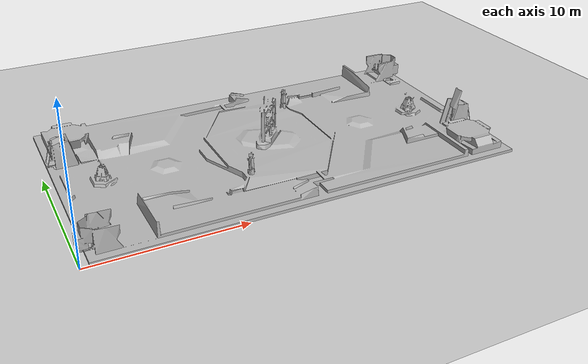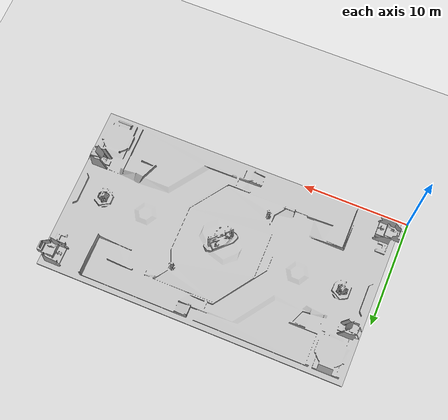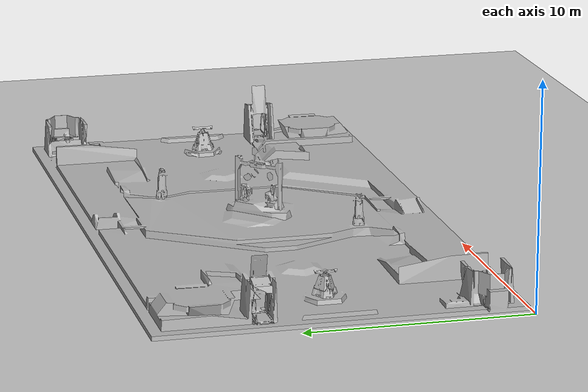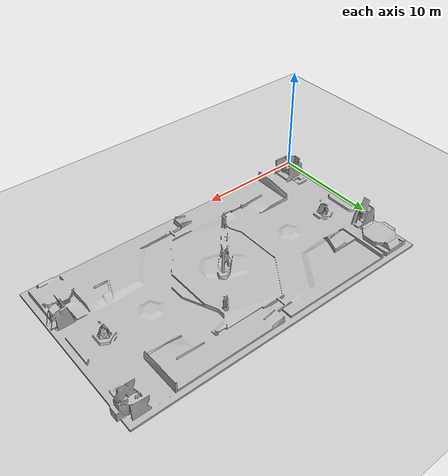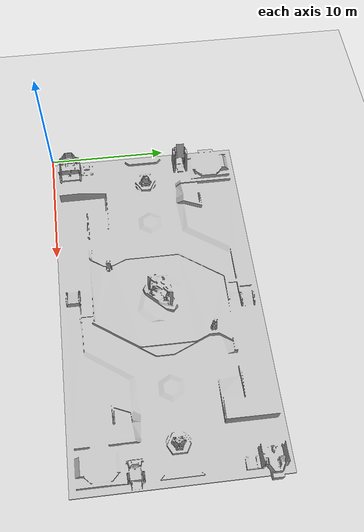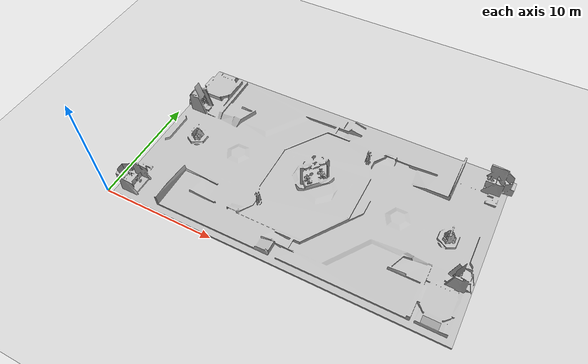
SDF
<sdf version="1.7">
 <world name="default">
  <light name="sun" type="directional">
   <pose>0 0 10 0 -0 0</pose>
   <diffuse>0.8 0.8 0.8 1</diffuse>
   <specular>0.2 0.2 0.2 1</specular>
   <attenuation>
    <range>1000</range>
    <constant>0.9</constant>
    <linear>0.01</linear>
    <quadratic>0.001</quadratic>
   </attenuation>
   <direction>-0.5 0.1 -0.9</direction>
   <spot><inner_angle>0</inner_angle><outer_angle>0</outer_angle><falloff>0</falloff></spot>
  </light>
  <model name="ground_plane">
   <static>1</static>
   <link name="link">
    <collision name="collision">
     <geometry><plane><normal>0 0 1</normal><size>100 100</size></plane></geometry>
     <surface>
      <contact><collide_bitmask>65535</collide_bitmask></contact>
      <friction><ode><mu>100</mu><mu2>50</mu2></ode></friction>
     </surface>
    </collision>
    <visual name="visual">
     <cast_shadows>0</cast_shadows>
     <geometry><plane><normal>0 0 1</normal><size>100 100</size></plane></geometry>
     <material>
      <script><uri>file://media/materials/scripts/gazebo.material</uri><name>Gazebo/Grey</name></script>
     </material>
    </visual>
   </link>
  </model>
  <gravity>0 0 -9.8</gravity>
  <magnetic_field>6e-06 2.3e-05 -4.2e-05</magnetic_field>
  <atmosphere type="adiabatic"/>
  <physics type="ode">
   <max_step_size>0.001</max_step_size>
   <real_time_factor>1</real_time_factor>
   <real_time_update_rate>1000</real_time_update_rate>
  </physics>
  <scene><ambient>0.4 0.4 0.4 1</ambient><background>0.7 0.7 0.7 1</background><shadows>1</shadows></scene>
  <audio><device>default</device></audio>
  <spherical_coordinates>
   <surface_model>EARTH_WGS84</surface_model>
   <latitude_deg>0</latitude_deg>
   <longitude_deg>0</longitude_deg>
   <elevation>0</elevation>
   <heading_deg>0</heading_deg>
  </spherical_coordinates>
  <model name="rmuc_map">
   <link name="map_frame">
    <inertial>
     <pose>1.96301 11.803 0.049848 0 -0 0</pose>
     <mass>1.35206e+06</mass>
     <inertia>
      <ixx>5.3653e+07</ixx>
      <ixy>366979</ixy>
      <ixz>2.5114</ixz>
      <iyy>1.78504e+07</iyy>
      <iyz>-21.2397</iyz>
      <izz>7.14663e+07</izz>
     </inertia>
    </inertial>
    <collision name="map_frame_fixed_joint_lump__rmuc_map_link_collision">
     <pose>0 0 -1 0 -0 0</pose>
     <geometry>
      <mesh><scale>0.001 0.001 0.001</scale><uri>model://RMUC2024_world/meshes/rmuc_map_light.stl</uri></mesh>
     </geometry>
    </collision>
    <visual name="map_frame_fixed_joint_lump__rmuc_map_link_visual">
     <pose>0 0 -1 0 -0 0</pose>
     <geometry>
      <mesh><scale>0.001 0.001 0.001</scale><uri>model://RMUC2024_world/meshes/rmuc_map_light.stl</uri></mesh>
     </geometry>
    </visual>
   </link>
   <static>1</static>
  </model>
 </world>
</sdf>
